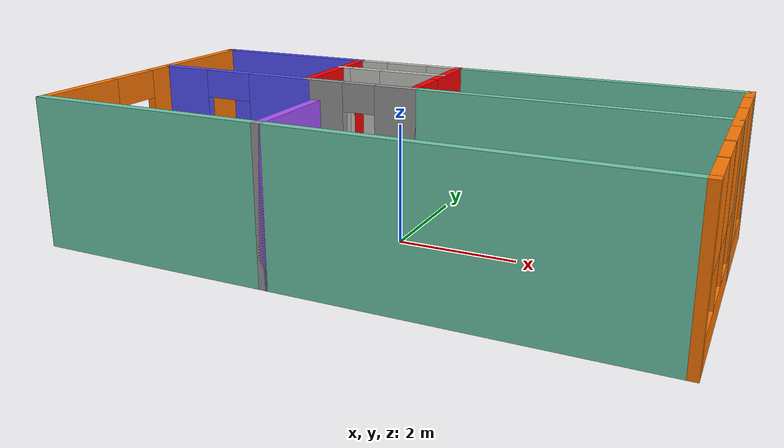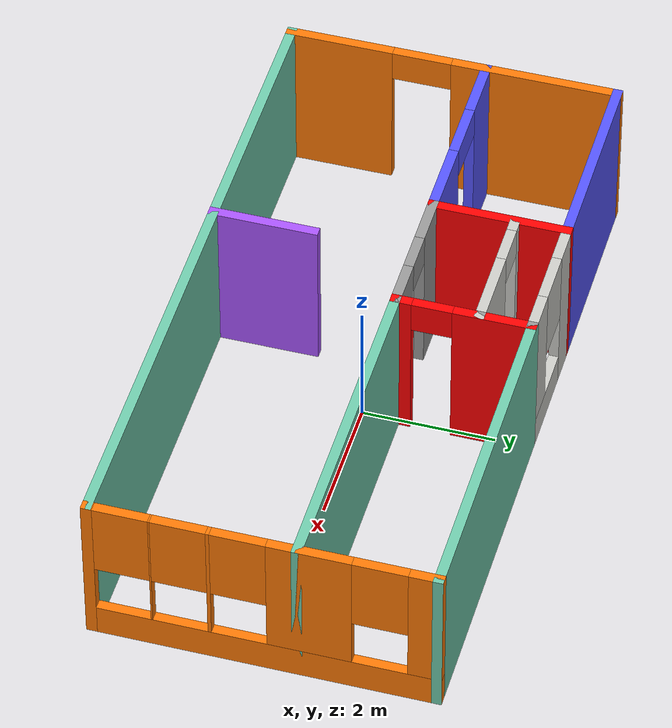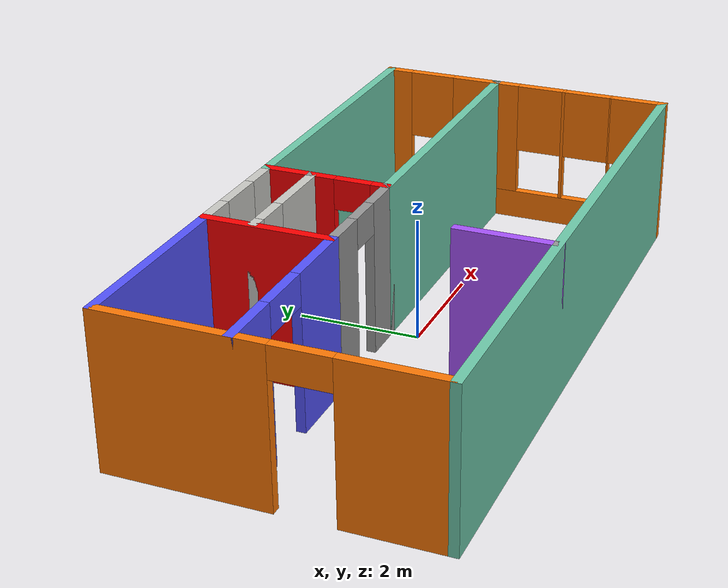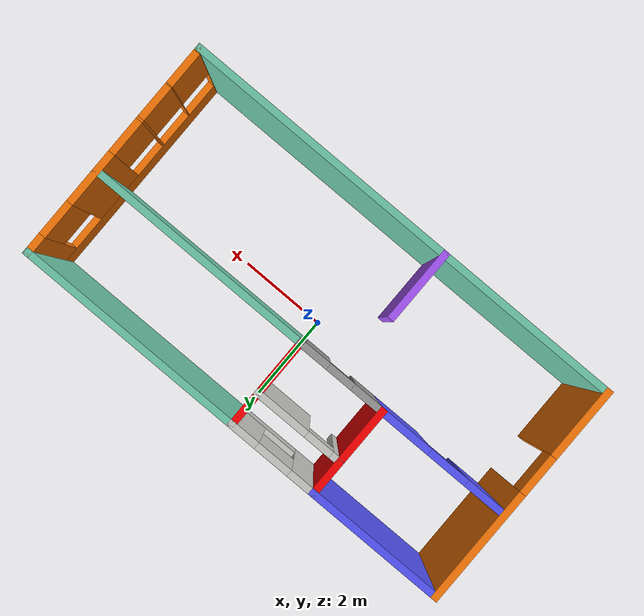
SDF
<?xml version='1.0'?>
<sdf version='1.6'>
  <model name='myApartment'>
    <pose frame=''>0 0 0 0 -0 0</pose>
    <link name='Wall_11'>
      <pose frame=''>-1 2.5 0 0 -0 0</pose>
      <visual name='Wall_11_Visual_0'>
        <pose frame=''>-0.740811 0 1.25 0 -0 0</pose>
        <geometry>
          <box>
            <size>0.668379 0.15 2.5</size>
          </box>
        </geometry>
        <material>
          <script>
            <uri>file://media/materials/scripts/gazebo.material</uri>
            <name>Gazebo/CeilingTiled</name>
          </script>
          <ambient>1 0 0 1</ambient>
        </material>
        <meta>
          <layer>0</layer>
        </meta>
      </visual>
      <collision name='Wall_11_Collision_0'>
        <geometry>
          <box>
            <size>0.668379 0.15 2.5</size>
          </box>
        </geometry>
        <pose frame=''>-0.740811 0 1.25 0 -0 0</pose>
      </collision>
      <visual name='Wall_11_Visual_1'>
        <pose frame=''>0.334189 0 0.25 0 -0 0</pose>
        <geometry>
          <box>
            <size>1.48162 0.15 0.5</size>
          </box>
        </geometry>
        <material>
          <script>
            <uri>file://media/materials/scripts/gazebo.material</uri>
            <name>Gazebo/CeilingTiled</name>
          </script>
          <ambient>1 0 0 1</ambient>
        </material>
        <meta>
          <layer>0</layer>
        </meta>
      </visual>
      <collision name='Wall_11_Collision_1'>
        <geometry>
          <box>
            <size>1.48162 0.15 0.5</size>
          </box>
        </geometry>
        <pose frame=''>0.334189 0 0.25 0 -0 0</pose>
      </collision>
      <visual name='Wall_11_Visual_2'>
        <pose frame=''>0.734189 0 1.5 0 -0 0</pose>
        <geometry>
          <box>
            <size>0.681621 0.15 2</size>
          </box>
        </geometry>
        <material>
          <script>
            <uri>file://media/materials/scripts/gazebo.material</uri>
            <name>Gazebo/CeilingTiled</name>
          </script>
          <ambient>1 0 0 1</ambient>
        </material>
        <meta>
          <layer>0</layer>
        </meta>
      </visual>
      <collision name='Wall_11_Collision_2'>
        <geometry>
          <box>
            <size>0.681621 0.15 2</size>
          </box>
        </geometry>
        <pose frame=''>0.734189 0 1.5 0 -0 0</pose>
      </collision>
      <visual name='Wall_11_Visual_3'>
        <pose frame=''>-0.006621 0 1.9 0 -0 0</pose>
        <geometry>
          <box>
            <size>0.8 0.15 1.2</size>
          </box>
        </geometry>
        <material>
          <script>
            <uri>file://media/materials/scripts/gazebo.material</uri>
            <name>Gazebo/CeilingTiled</name>
          </script>
          <ambient>1 0 0 1</ambient>
        </material>
        <meta>
          <layer>0</layer>
        </meta>
      </visual>
      <collision name='Wall_11_Collision_3'>
        <geometry>
          <box>
            <size>0.8 0.15 1.2</size>
          </box>
        </geometry>
        <pose frame=''>-0.006621 0 1.9 0 -0 0</pose>
      </collision>
    </link>
    <link name='Wall_12'>
      <collision name='Wall_12_Collision'>
        <geometry>
          <box>
            <size>0.15 0.15 2.5</size>
          </box>
        </geometry>
        <pose frame=''>0 0 1.25 0 -0 0</pose>
      </collision>
      <visual name='Wall_12_Visual'>
        <pose frame=''>0 0 1.25 0 -0 0</pose>
        <geometry>
          <box>
            <size>0.15 0.15 2.5</size>
          </box>
        </geometry>
        <material>
          <script>
            <uri>file://media/materials/scripts/gazebo.material</uri>
            <name>Gazebo/Grey</name>
          </script>
          <ambient>1 1 1 1</ambient>
        </material>
        <meta>
          <layer>0</layer>
        </meta>
      </visual>
      <pose frame=''>0 2.5 0 0 -0 0</pose>
    </link>
    <link name='Wall_16'>
      <pose frame=''>-5 0 0 0 -0 1.5708</pose>
      <visual name='Wall_16_Visual_0'>
        <pose frame=''>-1.74775 0 1.25 0 -0 0</pose>
        <geometry>
          <box>
            <size>1.65449 0.15 2.5</size>
          </box>
        </geometry>
        <material>
          <script>
            <uri>file://media/materials/scripts/gazebo.material</uri>
            <name>Gazebo/Grey</name>
          </script>
          <ambient>0.996078 0.47451 0.0196078 1</ambient>
        </material>
        <meta>
          <layer>0</layer>
        </meta>
      </visual>
      <collision name='Wall_16_Collision_0'>
        <geometry>
          <box>
            <size>1.65449 0.15 2.5</size>
          </box>
        </geometry>
        <pose frame=''>-1.74775 0 1.25 0 -0 0</pose>
      </collision>
      <visual name='Wall_16_Visual_1'>
        <pose frame=''>1.27725 0 1.25 0 -0 0</pose>
        <geometry>
          <box>
            <size>2.59551 0.15 2.5</size>
          </box>
        </geometry>
        <material>
          <script>
            <uri>file://media/materials/scripts/gazebo.material</uri>
            <name>Gazebo/Grey</name>
          </script>
          <ambient>0.996078 0.47451 0.0196078 1</ambient>
        </material>
        <meta>
          <layer>0</layer>
        </meta>
      </visual>
      <collision name='Wall_16_Collision_1'>
        <geometry>
          <box>
            <size>2.59551 0.15 2.5</size>
          </box>
        </geometry>
        <pose frame=''>1.27725 0 1.25 0 -0 0</pose>
      </collision>
      <visual name='Wall_16_Visual_2'>
        <pose frame=''>-0.470508 0 2.25 0 -0 0</pose>
        <geometry>
          <box>
            <size>0.9 0.15 0.5</size>
          </box>
        </geometry>
        <material>
          <script>
            <uri>file://media/materials/scripts/gazebo.material</uri>
            <name>Gazebo/Grey</name>
          </script>
          <ambient>0.996078 0.47451 0.0196078 1</ambient>
        </material>
        <meta>
          <layer>0</layer>
        </meta>
      </visual>
      <collision name='Wall_16_Collision_2'>
        <geometry>
          <box>
            <size>0.9 0.15 0.5</size>
          </box>
        </geometry>
        <pose frame=''>-0.470508 0 2.25 0 -0 0</pose>
      </collision>
    </link>
    <link name='Wall_17'>
      <collision name='Wall_17_Collision'>
        <geometry>
          <box>
            <size>3.15 0.15 2.5</size>
          </box>
        </geometry>
        <pose frame=''>0 0 1.25 0 -0 0</pose>
      </collision>
      <visual name='Wall_17_Visual'>
        <pose frame=''>0 0 1.25 0 -0 0</pose>
        <geometry>
          <box>
            <size>3.15 0.15 2.5</size>
          </box>
        </geometry>
        <material>
          <script>
            <uri>file://media/materials/scripts/gazebo.material</uri>
            <name>Gazebo/Grey</name>
          </script>
          <ambient>0.333333 0.333333 1 1</ambient>
        </material>
        <meta>
          <layer>0</layer>
        </meta>
      </visual>
      <pose frame=''>-3.5 2.5 0 0 -0 0</pose>
    </link>
    <link name='Wall_18'>
      <collision name='Wall_18_Collision'>
        <geometry>
          <box>
            <size>2.15 0.15 2.5</size>
          </box>
        </geometry>
        <pose frame=''>0 0 1.25 0 -0 0</pose>
      </collision>
      <visual name='Wall_18_Visual'>
        <pose frame=''>0 0 1.25 0 -0 0</pose>
        <geometry>
          <box>
            <size>2.15 0.15 2.5</size>
          </box>
        </geometry>
        <material>
          <script>
            <uri>file://media/materials/scripts/gazebo.material</uri>
            <name>Gazebo/Grey</name>
          </script>
          <ambient>1 0 0 1</ambient>
        </material>
        <meta>
          <layer>0</layer>
        </meta>
      </visual>
      <pose frame=''>-2 1.5 0 0 0 -1.5708</pose>
    </link>
    <link name='Wall_19'>
      <pose frame=''>-3.5 0.5 0 0 -0 3.14159</pose>
      <visual name='Wall_19_Visual_0'>
        <pose frame=''>-0.95578 0 1.25 0 -0 0</pose>
        <geometry>
          <box>
            <size>1.23844 0.15 2.5</size>
          </box>
        </geometry>
        <material>
          <script>
            <uri>file://media/materials/scripts/gazebo.material</uri>
            <name>Gazebo/Grey</name>
          </script>
          <ambient>0.333333 0.333333 1 1</ambient>
        </material>
        <meta>
          <layer>0</layer>
        </meta>
      </visual>
      <collision name='Wall_19_Collision_0'>
        <geometry>
          <box>
            <size>1.23844 0.15 2.5</size>
          </box>
        </geometry>
        <pose frame=''>-0.95578 0 1.25 0 -0 0</pose>
      </collision>
      <visual name='Wall_19_Visual_1'>
        <pose frame=''>1.06922 0 1.25 0 -0 0</pose>
        <geometry>
          <box>
            <size>1.01156 0.15 2.5</size>
          </box>
        </geometry>
        <material>
          <script>
            <uri>file://media/materials/scripts/gazebo.material</uri>
            <name>Gazebo/Grey</name>
          </script>
          <ambient>0.333333 0.333333 1 1</ambient>
        </material>
        <meta>
          <layer>0</layer>
        </meta>
      </visual>
      <collision name='Wall_19_Collision_1'>
        <geometry>
          <box>
            <size>1.01156 0.15 2.5</size>
          </box>
        </geometry>
        <pose frame=''>1.06922 0 1.25 0 -0 0</pose>
      </collision>
      <visual name='Wall_19_Visual_2'>
        <pose frame=''>0.113441 0 2.25 0 -0 0</pose>
        <geometry>
          <box>
            <size>0.9 0.15 0.5</size>
          </box>
        </geometry>
        <material>
          <script>
            <uri>file://media/materials/scripts/gazebo.material</uri>
            <name>Gazebo/Grey</name>
          </script>
          <ambient>0.333333 0.333333 1 1</ambient>
        </material>
        <meta>
          <layer>0</layer>
        </meta>
      </visual>
      <collision name='Wall_19_Collision_2'>
        <geometry>
          <box>
            <size>0.9 0.15 0.5</size>
          </box>
        </geometry>
        <pose frame=''>0.113441 0 2.25 0 -0 0</pose>
      </collision>
    </link>
    <link name='Wall_23'>
      <pose frame=''>-1 0.5 0 0 -0 0</pose>
      <visual name='Wall_23_Visual_0'>
        <pose frame=''>-0.677511 0 1.25 0 -0 0</pose>
        <geometry>
          <box>
            <size>0.794979 0.15 2.5</size>
          </box>
        </geometry>
        <material>
          <script>
            <uri>file://media/materials/scripts/gazebo.material</uri>
            <name>Gazebo/Grey</name>
          </script>
          <ambient>1 1 1 1</ambient>
        </material>
        <meta>
          <layer>0</layer>
        </meta>
      </visual>
      <collision name='Wall_23_Collision_0'>
        <geometry>
          <box>
            <size>0.794979 0.15 2.5</size>
          </box>
        </geometry>
        <pose frame=''>-0.677511 0 1.25 0 -0 0</pose>
      </collision>
      <visual name='Wall_23_Visual_1'>
        <pose frame=''>0.697489 0 1.25 0 -0 0</pose>
        <geometry>
          <box>
            <size>0.755021 0.15 2.5</size>
          </box>
        </geometry>
        <material>
          <script>
            <uri>file://media/materials/scripts/gazebo.material</uri>
            <name>Gazebo/Grey</name>
          </script>
          <ambient>1 1 1 1</ambient>
        </material>
        <meta>
          <layer>0</layer>
        </meta>
      </visual>
      <collision name='Wall_23_Collision_1'>
        <geometry>
          <box>
            <size>0.755021 0.15 2.5</size>
          </box>
        </geometry>
        <pose frame=''>0.697489 0 1.25 0 -0 0</pose>
      </collision>
      <visual name='Wall_23_Visual_2'>
        <pose frame=''>0.019979 0 2.25 0 -0 0</pose>
        <geometry>
          <box>
            <size>0.6 0.15 0.5</size>
          </box>
        </geometry>
        <material>
          <script>
            <uri>file://media/materials/scripts/gazebo.material</uri>
            <name>Gazebo/Grey</name>
          </script>
          <ambient>1 1 1 1</ambient>
        </material>
        <meta>
          <layer>0</layer>
        </meta>
      </visual>
      <collision name='Wall_23_Collision_2'>
        <geometry>
          <box>
            <size>0.6 0.15 0.5</size>
          </box>
        </geometry>
        <pose frame=''>0.019979 0 2.25 0 -0 0</pose>
      </collision>
    </link>
    <link name='Wall_24'>
      <collision name='Wall_24_Collision'>
        <geometry>
          <box>
            <size>0.15 0.15 2.5</size>
          </box>
        </geometry>
        <pose frame=''>0 0 1.25 0 -0 0</pose>
      </collision>
      <visual name='Wall_24_Visual'>
        <pose frame=''>0 0 1.25 0 -0 0</pose>
        <geometry>
          <box>
            <size>0.15 0.15 2.5</size>
          </box>
        </geometry>
        <material>
          <script>
            <uri>file://media/materials/scripts/gazebo.material</uri>
            <name>Gazebo/Grey</name>
          </script>
          <ambient>1 1 1 1</ambient>
        </material>
        <meta>
          <layer>0</layer>
        </meta>
      </visual>
      <pose frame=''>0 0.5 0 0 -0 0</pose>
    </link>
    <link name='Wall_26'>
      <pose frame=''>-1 1.734 0 0 -0 0</pose>
      <visual name='Wall_26_Visual_0'>
        <pose frame=''>-0.930212 0 1.25 0 -0 0</pose>
        <geometry>
          <box>
            <size>0.289575 0.15 2.5</size>
          </box>
        </geometry>
        <material>
          <script>
            <uri>file://media/materials/scripts/gazebo.material</uri>
            <name>Gazebo/CeilingTiled</name>
          </script>
          <ambient>1 0 0 1</ambient>
        </material>
        <meta>
          <layer>0</layer>
        </meta>
      </visual>
      <collision name='Wall_26_Collision_0'>
        <geometry>
          <box>
            <size>0.289575 0.15 2.5</size>
          </box>
        </geometry>
        <pose frame=''>-0.930212 0 1.25 0 -0 0</pose>
      </collision>
      <visual name='Wall_26_Visual_1'>
        <pose frame=''>0.444788 0 1.25 0 -0 0</pose>
        <geometry>
          <box>
            <size>1.26042 0.15 2.5</size>
          </box>
        </geometry>
        <material>
          <script>
            <uri>file://media/materials/scripts/gazebo.material</uri>
            <name>Gazebo/CeilingTiled</name>
          </script>
          <ambient>1 0 0 1</ambient>
        </material>
        <meta>
          <layer>0</layer>
        </meta>
      </visual>
      <collision name='Wall_26_Collision_1'>
        <geometry>
          <box>
            <size>1.26042 0.15 2.5</size>
          </box>
        </geometry>
        <pose frame=''>0.444788 0 1.25 0 -0 0</pose>
      </collision>
      <visual name='Wall_26_Visual_2'>
        <pose frame=''>-0.485425 0 2.25 0 -0 0</pose>
        <geometry>
          <box>
            <size>0.6 0.15 0.5</size>
          </box>
        </geometry>
        <material>
          <script>
            <uri>file://media/materials/scripts/gazebo.material</uri>
            <name>Gazebo/CeilingTiled</name>
          </script>
          <ambient>1 0 0 1</ambient>
        </material>
        <meta>
          <layer>0</layer>
        </meta>
      </visual>
      <collision name='Wall_26_Collision_2'>
        <geometry>
          <box>
            <size>0.6 0.15 0.5</size>
          </box>
        </geometry>
        <pose frame=''>-0.485425 0 2.25 0 -0 0</pose>
      </collision>
    </link>
    <link name='Wall_27'>
      <collision name='Wall_27_Collision'>
        <geometry>
          <box>
            <size>0.15 0.15 2.5</size>
          </box>
        </geometry>
        <pose frame=''>0 0 1.25 0 -0 0</pose>
      </collision>
      <visual name='Wall_27_Visual'>
        <pose frame=''>0 0 1.25 0 -0 0</pose>
        <geometry>
          <box>
            <size>0.15 0.15 2.5</size>
          </box>
        </geometry>
        <material>
          <script>
            <uri>file://media/materials/scripts/gazebo.material</uri>
            <name>Gazebo/Grey</name>
          </script>
          <ambient>1 1 1 1</ambient>
        </material>
        <meta>
          <layer>0</layer>
        </meta>
      </visual>
      <pose frame=''>0 1.734 0 0 -0 0</pose>
    </link>
    <link name='Wall_29'>
      <collision name='Wall_29_Collision'>
        <geometry>
          <box>
            <size>1.65 0.15 2.5</size>
          </box>
        </geometry>
        <pose frame=''>0 0 1.25 0 -0 0</pose>
      </collision>
      <visual name='Wall_29_Visual'>
        <pose frame=''>0 0 1.25 0 -0 0</pose>
        <geometry>
          <box>
            <size>1.65 0.15 2.5</size>
          </box>
        </geometry>
        <material>
          <script>
            <uri>file://media/materials/scripts/gazebo.material</uri>
            <name>Gazebo/Grey</name>
          </script>
          <ambient>0.666667 0.333333 1 1</ambient>
        </material>
        <meta>
          <layer>0</layer>
        </meta>
      </visual>
      <pose frame=''>-1 -1.75 0 0 0 -1.5708</pose>
    </link>
    <link name='Wall_30'>
      <collision name='Wall_30_Collision'>
        <geometry>
          <box>
            <size>0.15 0.15 2.5</size>
          </box>
        </geometry>
        <pose frame=''>0 0 1.25 0 -0 0</pose>
      </collision>
      <visual name='Wall_30_Visual'>
        <pose frame=''>0 0 1.25 0 -0 0</pose>
        <geometry>
          <box>
            <size>0.15 0.15 2.5</size>
          </box>
        </geometry>
        <material>
          <script>
            <uri>file://media/materials/scripts/gazebo.material</uri>
            <name>Gazebo/Grey</name>
          </script>
          <ambient>1 1 1 1</ambient>
        </material>
        <meta>
          <layer>0</layer>
        </meta>
      </visual>
      <pose frame=''>-1 -2.5 0 0 -0 0</pose>
    </link>
    <link name='Wall_4'>
      <collision name='Wall_4_Collision'>
        <geometry>
          <box>
            <size>10.15 0.15 2.5</size>
          </box>
        </geometry>
        <pose frame=''>0 0 1.25 0 -0 0</pose>
      </collision>
      <visual name='Wall_4_Visual'>
        <pose frame=''>0 0 1.25 0 -0 0</pose>
        <geometry>
          <box>
            <size>10.15 0.15 2.5</size>
          </box>
        </geometry>
        <material>
          <script>
            <uri>file://media/materials/scripts/gazebo.material</uri>
            <name>Gazebo/Grey</name>
          </script>
          <ambient>0.435294 0.796078 0.67451 1</ambient>
        </material>
        <meta>
          <layer>0</layer>
        </meta>
      </visual>
      <pose frame=''>0 -2.5 0 0 -0 0</pose>
    </link>
    <link name='Wall_5'>
      <pose frame=''>5 0 0 0 -0 1.5708</pose>
      <visual name='Wall_5_Visual_0'>
        <pose frame=''>-2.49416 0 1.25 0 -0 0</pose>
        <geometry>
          <box>
            <size>0.161681 0.15 2.5</size>
          </box>
        </geometry>
        <material>
          <script>
            <uri>file://media/materials/scripts/gazebo.material</uri>
            <name>Gazebo/Grey</name>
          </script>
          <ambient>0.996078 0.47451 0.0196078 1</ambient>
        </material>
        <meta>
          <layer>0</layer>
        </meta>
      </visual>
      <collision name='Wall_5_Collision_0'>
        <geometry>
          <box>
            <size>0.161681 0.15 2.5</size>
          </box>
        </geometry>
        <pose frame=''>-2.49416 0 1.25 0 -0 0</pose>
      </collision>
      <visual name='Wall_5_Visual_1'>
        <pose frame=''>0.08084 0 0.25 0 -0 0</pose>
        <geometry>
          <box>
            <size>4.98832 0.15 0.5</size>
          </box>
        </geometry>
        <material>
          <script>
            <uri>file://media/materials/scripts/gazebo.material</uri>
            <name>Gazebo/Grey</name>
          </script>
          <ambient>0.996078 0.47451 0.0196078 1</ambient>
        </material>
        <meta>
          <layer>0</layer>
        </meta>
      </visual>
      <collision name='Wall_5_Collision_1'>
        <geometry>
          <box>
            <size>4.98832 0.15 0.5</size>
          </box>
        </geometry>
        <pose frame=''>0.08084 0 0.25 0 -0 0</pose>
      </collision>
      <visual name='Wall_5_Visual_2'>
        <pose frame=''>-1.60102 0 1.5 0 -0 0</pose>
        <geometry>
          <box>
            <size>0.024606 0.15 2</size>
          </box>
        </geometry>
        <material>
          <script>
            <uri>file://media/materials/scripts/gazebo.material</uri>
            <name>Gazebo/Grey</name>
          </script>
          <ambient>0.996078 0.47451 0.0196078 1</ambient>
        </material>
        <meta>
          <layer>0</layer>
        </meta>
      </visual>
      <collision name='Wall_5_Collision_2'>
        <geometry>
          <box>
            <size>0.024606 0.15 2</size>
          </box>
        </geometry>
        <pose frame=''>-1.60102 0 1.5 0 -0 0</pose>
      </collision>
      <visual name='Wall_5_Visual_3'>
        <pose frame=''>-0.76311 0 1.5 0 -0 0</pose>
        <geometry>
          <box>
            <size>0.051206 0.15 2</size>
          </box>
        </geometry>
        <material>
          <script>
            <uri>file://media/materials/scripts/gazebo.material</uri>
            <name>Gazebo/Grey</name>
          </script>
          <ambient>0.996078 0.47451 0.0196078 1</ambient>
        </material>
        <meta>
          <layer>0</layer>
        </meta>
      </visual>
      <collision name='Wall_5_Collision_3'>
        <geometry>
          <box>
            <size>0.051206 0.15 2</size>
          </box>
        </geometry>
        <pose frame=''>-0.76311 0 1.5 0 -0 0</pose>
      </collision>
      <visual name='Wall_5_Visual_4'>
        <pose frame=''>0.6733 0 1.5 0 -0 0</pose>
        <geometry>
          <box>
            <size>1.22161 0.15 2</size>
          </box>
        </geometry>
        <material>
          <script>
            <uri>file://media/materials/scripts/gazebo.material</uri>
            <name>Gazebo/Grey</name>
          </script>
          <ambient>0.996078 0.47451 0.0196078 1</ambient>
        </material>
        <meta>
          <layer>0</layer>
        </meta>
      </visual>
      <collision name='Wall_5_Collision_4'>
        <geometry>
          <box>
            <size>1.22161 0.15 2</size>
          </box>
        </geometry>
        <pose frame=''>0.6733 0 1.5 0 -0 0</pose>
      </collision>
      <visual name='Wall_5_Visual_5'>
        <pose frame=''>2.32955 0 1.5 0 -0 0</pose>
        <geometry>
          <box>
            <size>0.490892 0.15 2</size>
          </box>
        </geometry>
        <material>
          <script>
            <uri>file://media/materials/scripts/gazebo.material</uri>
            <name>Gazebo/Grey</name>
          </script>
          <ambient>0.996078 0.47451 0.0196078 1</ambient>
        </material>
        <meta>
          <layer>0</layer>
        </meta>
      </visual>
      <collision name='Wall_5_Collision_5'>
        <geometry>
          <box>
            <size>0.490892 0.15 2</size>
          </box>
        </geometry>
        <pose frame=''>2.32955 0 1.5 0 -0 0</pose>
      </collision>
      <visual name='Wall_5_Visual_6'>
        <pose frame=''>-2.01332 0 1.9 0 -0 0</pose>
        <geometry>
          <box>
            <size>0.8 0.15 1.2</size>
          </box>
        </geometry>
        <material>
          <script>
            <uri>file://media/materials/scripts/gazebo.material</uri>
            <name>Gazebo/Grey</name>
          </script>
          <ambient>0.996078 0.47451 0.0196078 1</ambient>
        </material>
        <meta>
          <layer>0</layer>
        </meta>
      </visual>
      <collision name='Wall_5_Collision_6'>
        <geometry>
          <box>
            <size>0.8 0.15 1.2</size>
          </box>
        </geometry>
        <pose frame=''>-2.01332 0 1.9 0 -0 0</pose>
      </collision>
      <visual name='Wall_5_Visual_7'>
        <pose frame=''>-1.18871 0 1.9 0 -0 0</pose>
        <geometry>
          <box>
            <size>0.8 0.15 1.2</size>
          </box>
        </geometry>
        <material>
          <script>
            <uri>file://media/materials/scripts/gazebo.material</uri>
            <name>Gazebo/Grey</name>
          </script>
          <ambient>0.996078 0.47451 0.0196078 1</ambient>
        </material>
        <meta>
          <layer>0</layer>
        </meta>
      </visual>
      <collision name='Wall_5_Collision_7'>
        <geometry>
          <box>
            <size>0.8 0.15 1.2</size>
          </box>
        </geometry>
        <pose frame=''>-1.18871 0 1.9 0 -0 0</pose>
      </collision>
      <visual name='Wall_5_Visual_8'>
        <pose frame=''>-0.337507 0 1.9 0 -0 0</pose>
        <geometry>
          <box>
            <size>0.8 0.15 1.2</size>
          </box>
        </geometry>
        <material>
          <script>
            <uri>file://media/materials/scripts/gazebo.material</uri>
            <name>Gazebo/Grey</name>
          </script>
          <ambient>0.996078 0.47451 0.0196078 1</ambient>
        </material>
        <meta>
          <layer>0</layer>
        </meta>
      </visual>
      <collision name='Wall_5_Collision_8'>
        <geometry>
          <box>
            <size>0.8 0.15 1.2</size>
          </box>
        </geometry>
        <pose frame=''>-0.337507 0 1.9 0 -0 0</pose>
      </collision>
      <visual name='Wall_5_Visual_9'>
        <pose frame=''>1.68411 0 1.9 0 -0 0</pose>
        <geometry>
          <box>
            <size>0.8 0.15 1.2</size>
          </box>
        </geometry>
        <material>
          <script>
            <uri>file://media/materials/scripts/gazebo.material</uri>
            <name>Gazebo/Grey</name>
          </script>
          <ambient>0.996078 0.47451 0.0196078 1</ambient>
        </material>
        <meta>
          <layer>0</layer>
        </meta>
      </visual>
      <collision name='Wall_5_Collision_9'>
        <geometry>
          <box>
            <size>0.8 0.15 1.2</size>
          </box>
        </geometry>
        <pose frame=''>1.68411 0 1.9 0 -0 0</pose>
      </collision>
    </link>
    <link name='Wall_6'>
      <collision name='Wall_6_Collision'>
        <geometry>
          <box>
            <size>5.15 0.15 2.5</size>
          </box>
        </geometry>
        <pose frame=''>0 0 1.25 0 -0 0</pose>
      </collision>
      <visual name='Wall_6_Visual'>
        <pose frame=''>0 0 1.25 0 -0 0</pose>
        <geometry>
          <box>
            <size>5.15 0.15 2.5</size>
          </box>
        </geometry>
        <material>
          <script>
            <uri>file://media/materials/scripts/gazebo.material</uri>
            <name>Gazebo/Grey</name>
          </script>
          <ambient>0.435294 0.796078 0.67451 1</ambient>
        </material>
        <meta>
          <layer>0</layer>
        </meta>
      </visual>
      <pose frame=''>2.5 2.5 0 0 -0 3.14159</pose>
    </link>
    <link name='Wall_7'>
      <pose frame=''>0 1.5 0 0 0 -1.5708</pose>
      <visual name='Wall_7_Visual_0'>
        <pose frame=''>-0.460352 0 1.25 0 -0 0</pose>
        <geometry>
          <box>
            <size>1.2293 0.15 2.5</size>
          </box>
        </geometry>
        <material>
          <script>
            <uri>file://media/materials/scripts/gazebo.material</uri>
            <name>Gazebo/Grey</name>
          </script>
          <ambient>1 0 0 1</ambient>
        </material>
        <meta>
          <layer>0</layer>
        </meta>
      </visual>
      <collision name='Wall_7_Collision_0'>
        <geometry>
          <box>
            <size>1.2293 0.15 2.5</size>
          </box>
        </geometry>
        <pose frame=''>-0.460352 0 1.25 0 -0 0</pose>
      </collision>
      <visual name='Wall_7_Visual_1'>
        <pose frame=''>0.914648 0 1.25 0 -0 0</pose>
        <geometry>
          <box>
            <size>0.320703 0.15 2.5</size>
          </box>
        </geometry>
        <material>
          <script>
            <uri>file://media/materials/scripts/gazebo.material</uri>
            <name>Gazebo/Grey</name>
          </script>
          <ambient>1 0 0 1</ambient>
        </material>
        <meta>
          <layer>0</layer>
        </meta>
      </visual>
      <collision name='Wall_7_Collision_1'>
        <geometry>
          <box>
            <size>0.320703 0.15 2.5</size>
          </box>
        </geometry>
        <pose frame=''>0.914648 0 1.25 0 -0 0</pose>
      </collision>
      <visual name='Wall_7_Visual_2'>
        <pose frame=''>0.454297 0 2.25 0 -0 0</pose>
        <geometry>
          <box>
            <size>0.6 0.15 0.5</size>
          </box>
        </geometry>
        <material>
          <script>
            <uri>file://media/materials/scripts/gazebo.material</uri>
            <name>Gazebo/Grey</name>
          </script>
          <ambient>1 0 0 1</ambient>
        </material>
        <meta>
          <layer>0</layer>
        </meta>
      </visual>
      <collision name='Wall_7_Collision_2'>
        <geometry>
          <box>
            <size>0.6 0.15 0.5</size>
          </box>
        </geometry>
        <pose frame=''>0.454297 0 2.25 0 -0 0</pose>
      </collision>
    </link>
    <link name='Wall_8'>
      <collision name='Wall_8_Collision'>
        <geometry>
          <box>
            <size>5.15 0.15 2.5</size>
          </box>
        </geometry>
        <pose frame=''>0 0 1.25 0 -0 0</pose>
      </collision>
      <visual name='Wall_8_Visual'>
        <pose frame=''>0 0 1.25 0 -0 0</pose>
        <geometry>
          <box>
            <size>5.15 0.15 2.5</size>
          </box>
        </geometry>
        <material>
          <script>
            <uri>file://media/materials/scripts/gazebo.material</uri>
            <name>Gazebo/Grey</name>
          </script>
          <ambient>0.435294 0.796078 0.67451 1</ambient>
        </material>
        <meta>
          <layer>0</layer>
        </meta>
      </visual>
      <pose frame=''>2.5 0.5 0 0 -0 0</pose>
    </link>
    <link name='Wall_9'>
      <collision name='Wall_9_Collision'>
        <geometry>
          <box>
            <size>0.15 0.15 2.5</size>
          </box>
        </geometry>
        <pose frame=''>0 0 1.25 0 -0 0</pose>
      </collision>
      <visual name='Wall_9_Visual'>
        <pose frame=''>0 0 1.25 0 -0 0</pose>
        <geometry>
          <box>
            <size>0.15 0.15 2.5</size>
          </box>
        </geometry>
        <material>
          <script>
            <uri>file://media/materials/scripts/gazebo.material</uri>
            <name>Gazebo/Grey</name>
          </script>
          <ambient>1 1 1 1</ambient>
        </material>
        <meta>
          <layer>0</layer>
        </meta>
      </visual>
      <pose frame=''>5 0.5 0 0 -0 0</pose>
    </link>
    <static>1</static>
  </model>
</sdf>
